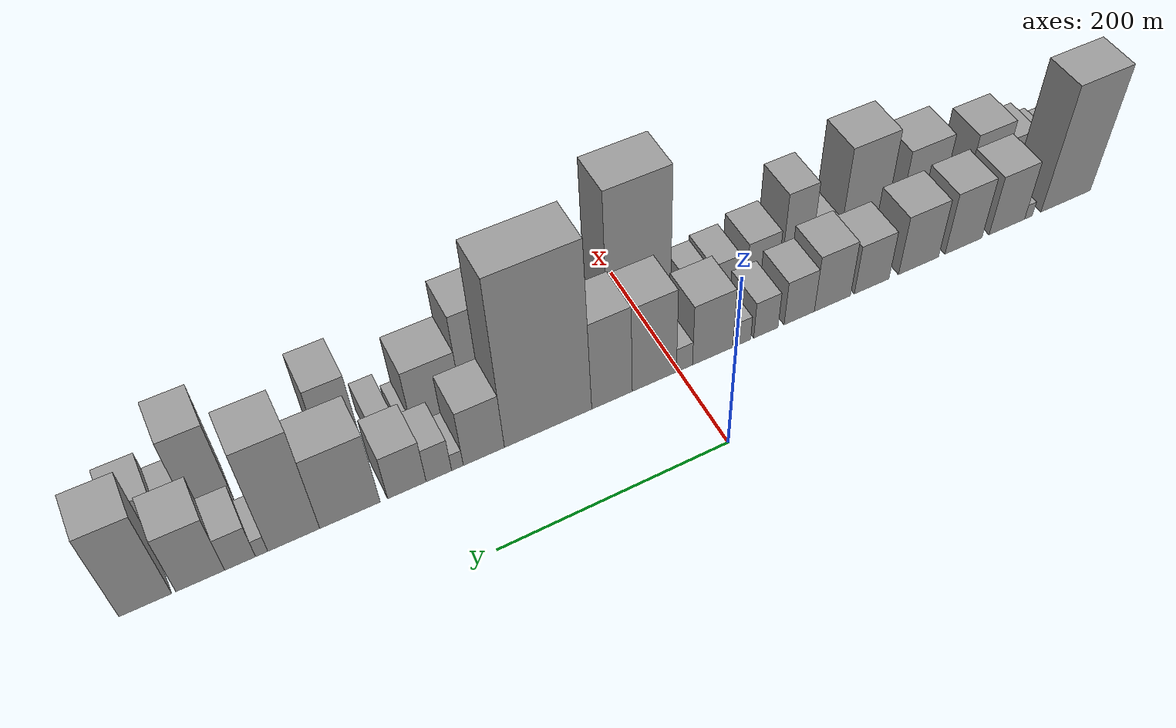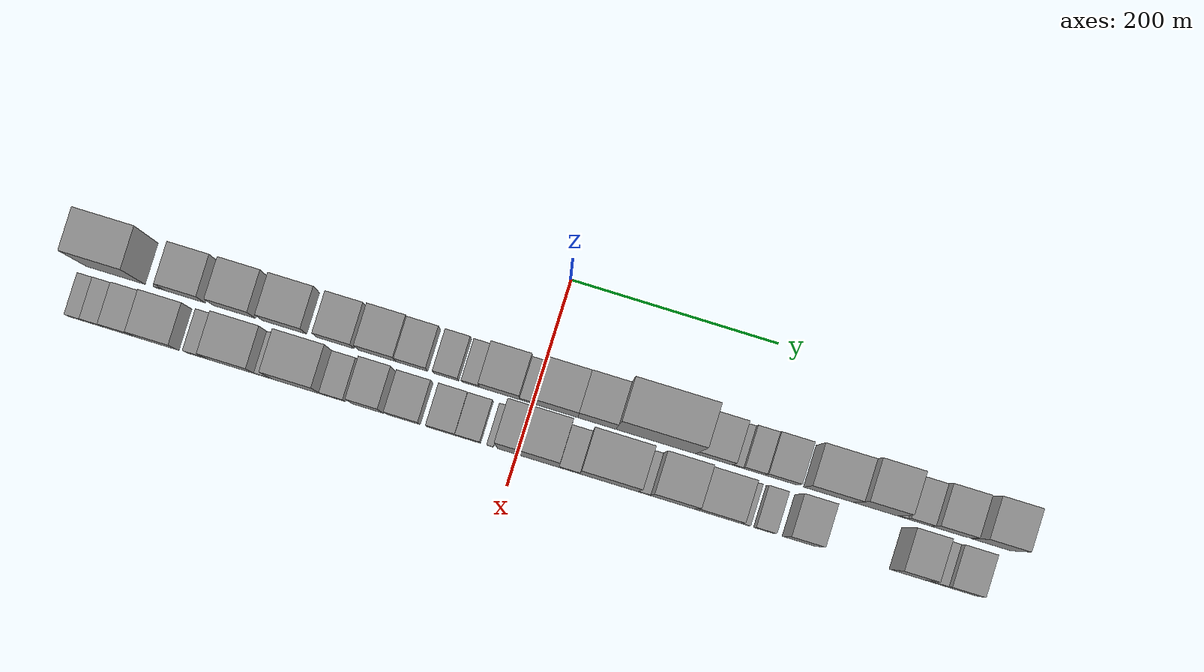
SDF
<sdf version="1.6">
 <world name="default">
  <scene>
   <sky><clouds><speed>12</speed></clouds></sky>
   <ambient>0.4 0.4 0.4 1</ambient>
   <background>0.7 0.7 0.7 1</background>
   <shadows>1</shadows>
  </scene>
  <gravity>0 0 -9.8066</gravity>
  <magnetic_field>6e-06 2.3e-05 -4.2e-05</magnetic_field>
  <physics default="0" name="default_physics" type="ode">
   <ode>
    <solver>
     <type>quick</type>
     <iters>10</iters>
     <sor>1.0</sor>
     <use_dynamic_moi_rescaling>0</use_dynamic_moi_rescaling>
    </solver>
    <constraints>
     <cfm>0</cfm>
     <erp>0.2</erp>
     <contact_max_correcting_vel>100</contact_max_correcting_vel>
     <contact_surface_layer>0.001</contact_surface_layer>
    </constraints>
   </ode>
   <max_step_size>0.004</max_step_size>
   <real_time_factor>1</real_time_factor>
   <real_time_update_rate>250</real_time_update_rate>
  </physics>
  <light name="sun" type="directional">
   <pose>0 0 10 0 0 0</pose>
   <diffuse>0.8 0.8 0.8 1</diffuse>
   <specular>0.2 0.2 0.2 1</specular>
   <attenuation>
    <range>1000</range>
    <constant>0.9</constant>
    <linear>0.01</linear>
    <quadratic>0.001</quadratic>
   </attenuation>
   <direction>-0.5 0.1 -0.9</direction>
  </light>
  <model name="building_1">
   <static>1</static>
   <pose>100.0000 -402.5720 0 0.000000 0.000000 0.000000</pose>
   <link name="link">
    <pose>0 0 75.00 0 0 0</pose>
    <collision name="collision"><geometry><box><size>40.0000 56.8560 150.0000</size></box></geometry></collision>
    <visual name="visual">
     <cast_shadows>0</cast_shadows>
     <geometry><box><size>40.0000 56.8560 150.0000</size></box></geometry>
     <material>
      <script>
       <uri>model://grey_wall/materials/scripts</uri>
       <uri>model://grey_wall/materials/textures</uri>
       <name>vrc/grey_wall</name>
      </script>
     </material>
    </visual>
   </link>
  </model>
  <model name="building_2">
   <static>1</static>
   <pose>100.0000 -359.8157 0 0.000000 0.000000 0.000000</pose>
   <link name="link">
    <pose>0 0 9.00 0 0 0</pose>
    <collision name="collision"><geometry><box><size>40.0000 8.6565 18.0000</size></box></geometry></collision>
    <visual name="visual">
     <cast_shadows>0</cast_shadows>
     <geometry><box><size>40.0000 8.6565 18.0000</size></box></geometry>
     <material>
      <script>
       <uri>model://grey_wall/materials/scripts</uri>
       <uri>model://grey_wall/materials/textures</uri>
       <name>vrc/grey_wall</name>
      </script>
     </material>
    </visual>
   </link>
  </model>
  <model name="building_3">
   <static>1</static>
   <pose>100.0000 -335.6497 0 0.000000 0.000000 0.000000</pose>
   <link name="link">
    <pose>0 0 36.00 0 0 0</pose>
    <collision name="collision"><geometry><box><size>40.0000 39.6756 72.0000</size></box></geometry></collision>
    <visual name="visual">
     <cast_shadows>0</cast_shadows>
     <geometry><box><size>40.0000 39.6756 72.0000</size></box></geometry>
     <material>
      <script>
       <uri>model://grey_wall/materials/scripts</uri>
       <uri>model://grey_wall/materials/textures</uri>
       <name>vrc/grey_wall</name>
      </script>
     </material>
    </visual>
   </link>
  </model>
  <model name="building_4">
   <static>1</static>
   <pose>100.0000 -287.6907 0 0.000000 0.000000 0.000000</pose>
   <link name="link">
    <pose>0 0 37.50 0 0 0</pose>
    <collision name="collision"><geometry><box><size>40.0000 40.2424 75.0000</size></box></geometry></collision>
    <visual name="visual">
     <cast_shadows>0</cast_shadows>
     <geometry><box><size>40.0000 40.2424 75.0000</size></box></geometry>
     <material>
      <script>
       <uri>model://grey_wall/materials/scripts</uri>
       <uri>model://grey_wall/materials/textures</uri>
       <name>vrc/grey_wall</name>
      </script>
     </material>
    </visual>
   </link>
  </model>
  <model name="building_5">
   <static>1</static>
   <pose>100.0000 -239.2767 0 0.000000 0.000000 0.000000</pose>
   <link name="link">
    <pose>0 0 36.00 0 0 0</pose>
    <collision name="collision"><geometry><box><size>40.0000 42.5856 72.0000</size></box></geometry></collision>
    <visual name="visual">
     <cast_shadows>0</cast_shadows>
     <geometry><box><size>40.0000 42.5856 72.0000</size></box></geometry>
     <material>
      <script>
       <uri>model://grey_wall/materials/scripts</uri>
       <uri>model://grey_wall/materials/textures</uri>
       <name>vrc/grey_wall</name>
      </script>
     </material>
    </visual>
   </link>
  </model>
  <model name="building_6">
   <static>1</static>
   <pose>100.0000 -190.0187 0 0.000000 0.000000 0.000000</pose>
   <link name="link">
    <pose>0 0 30.00 0 0 0</pose>
    <collision name="collision"><geometry><box><size>40.0000 35.9303 60.0000</size></box></geometry></collision>
    <visual name="visual">
     <cast_shadows>0</cast_shadows>
     <geometry><box><size>40.0000 35.9303 60.0000</size></box></geometry>
     <material>
      <script>
       <uri>model://grey_wall/materials/scripts</uri>
       <uri>model://grey_wall/materials/textures</uri>
       <name>vrc/grey_wall</name>
      </script>
     </material>
    </visual>
   </link>
  </model>
  <model name="building_7">
   <static>1</static>
   <pose>100.0000 -149.6607 0 0.000000 0.000000 0.000000</pose>
   <link name="link">
    <pose>0 0 34.50 0 0 0</pose>
    <collision name="collision"><geometry><box><size>40.0000 36.7856 69.0000</size></box></geometry></collision>
    <visual name="visual">
     <cast_shadows>0</cast_shadows>
     <geometry><box><size>40.0000 36.7856 69.0000</size></box></geometry>
     <material>
      <script>
       <uri>model://grey_wall/materials/scripts</uri>
       <uri>model://grey_wall/materials/textures</uri>
       <name>vrc/grey_wall</name>
      </script>
     </material>
    </visual>
   </link>
  </model>
  <model name="building_8">
   <static>1</static>
   <pose>100.0000 -116.1760 0 0.000000 0.000000 0.000000</pose>
   <link name="link">
    <pose>0 0 27.00 0 0 0</pose>
    <collision name="collision"><geometry><box><size>40.0000 30.1839 54.0000</size></box></geometry></collision>
    <visual name="visual">
     <cast_shadows>0</cast_shadows>
     <geometry><box><size>40.0000 30.1839 54.0000</size></box></geometry>
     <material>
      <script>
       <uri>model://grey_wall/materials/scripts</uri>
       <uri>model://grey_wall/materials/textures</uri>
       <name>vrc/grey_wall</name>
      </script>
     </material>
    </visual>
   </link>
  </model>
  <model name="building_9">
   <static>1</static>
   <pose>100.0000 -83.1549 0 0.000000 0.000000 0.000000</pose>
   <link name="link">
    <pose>0 0 22.50 0 0 0</pose>
    <collision name="collision"><geometry><box><size>40.0000 23.8582 45.0000</size></box></geometry></collision>
    <visual name="visual">
     <cast_shadows>0</cast_shadows>
     <geometry><box><size>40.0000 23.8582 45.0000</size></box></geometry>
     <material>
      <script>
       <uri>model://grey_wall/materials/scripts</uri>
       <uri>model://grey_wall/materials/textures</uri>
       <name>vrc/grey_wall</name>
      </script>
     </material>
    </visual>
   </link>
  </model>
  <model name="building_10">
   <static>1</static>
   <pose>100.0000 -59.6057 0 0.000000 0.000000 0.000000</pose>
   <link name="link">
    <pose>0 0 15.00 0 0 0</pose>
    <collision name="collision"><geometry><box><size>40.0000 17.2402 30.0000</size></box></geometry></collision>
    <visual name="visual">
     <cast_shadows>0</cast_shadows>
     <geometry><box><size>40.0000 17.2402 30.0000</size></box></geometry>
     <material>
      <script>
       <uri>model://grey_wall/materials/scripts</uri>
       <uri>model://grey_wall/materials/textures</uri>
       <name>vrc/grey_wall</name>
      </script>
     </material>
    </visual>
   </link>
  </model>
  <model name="building_11">
   <static>1</static>
   <pose>100.0000 -31.7075 0 0.000000 0.000000 0.000000</pose>
   <link name="link">
    <pose>0 0 37.50 0 0 0</pose>
    <collision name="collision"><geometry><box><size>40.0000 38.5562 75.0000</size></box></geometry></collision>
    <visual name="visual">
     <cast_shadows>0</cast_shadows>
     <geometry><box><size>40.0000 38.5562 75.0000</size></box></geometry>
     <material>
      <script>
       <uri>model://grey_wall/materials/scripts</uri>
       <uri>model://grey_wall/materials/textures</uri>
       <name>vrc/grey_wall</name>
      </script>
     </material>
    </visual>
   </link>
  </model>
  <model name="building_12">
   <static>1</static>
   <pose>100.0000 -4.8689 0 0.000000 0.000000 0.000000</pose>
   <link name="link">
    <pose>0 0 15.00 0 0 0</pose>
    <collision name="collision"><geometry><box><size>40.0000 15.1210 30.0000</size></box></geometry></collision>
    <visual name="visual">
     <cast_shadows>0</cast_shadows>
     <geometry><box><size>40.0000 15.1210 30.0000</size></box></geometry>
     <material>
      <script>
       <uri>model://grey_wall/materials/scripts</uri>
       <uri>model://grey_wall/materials/textures</uri>
       <name>vrc/grey_wall</name>
      </script>
     </material>
    </visual>
   </link>
  </model>
  <model name="building_13">
   <static>1</static>
   <pose>100.0000 23.0948 0 0.000000 0.000000 0.000000</pose>
   <link name="link">
    <pose>0 0 52.50 0 0 0</pose>
    <collision name="collision"><geometry><box><size>40.0000 40.8064 105.0000</size></box></geometry></collision>
    <visual name="visual">
     <cast_shadows>0</cast_shadows>
     <geometry><box><size>40.0000 40.8064 105.0000</size></box></geometry>
     <material>
      <script>
       <uri>model://grey_wall/materials/scripts</uri>
       <uri>model://grey_wall/materials/textures</uri>
       <name>vrc/grey_wall</name>
      </script>
     </material>
    </visual>
   </link>
  </model>
  <model name="building_14">
   <static>1</static>
   <pose>100.0000 61.8879 0 0.000000 0.000000 0.000000</pose>
   <link name="link">
    <pose>0 0 54.00 0 0 0</pose>
    <collision name="collision"><geometry><box><size>40.0000 36.7798 108.0000</size></box></geometry></collision>
    <visual name="visual">
     <cast_shadows>0</cast_shadows>
     <geometry><box><size>40.0000 36.7798 108.0000</size></box></geometry>
     <material>
      <script>
       <uri>model://grey_wall/materials/scripts</uri>
       <uri>model://grey_wall/materials/textures</uri>
       <name>vrc/grey_wall</name>
      </script>
     </material>
    </visual>
   </link>
  </model>
  <model name="building_15">
   <static>1</static>
   <pose>100.0000 118.6567 0 0.000000 0.000000 0.000000</pose>
   <link name="link">
    <pose>0 0 102.00 0 0 0</pose>
    <collision name="collision"><geometry><box><size>40.0000 76.7579 204.0000</size></box></geometry></collision>
    <visual name="visual">
     <cast_shadows>0</cast_shadows>
     <geometry><box><size>40.0000 76.7579 204.0000</size></box></geometry>
     <material>
      <script>
       <uri>model://grey_wall/materials/scripts</uri>
       <uri>model://grey_wall/materials/textures</uri>
       <name>vrc/grey_wall</name>
      </script>
     </material>
    </visual>
   </link>
  </model>
  <model name="building_16">
   <static>1</static>
   <pose>100.0000 174.5350 0 0.000000 0.000000 0.000000</pose>
   <link name="link">
    <pose>0 0 34.50 0 0 0</pose>
    <collision name="collision"><geometry><box><size>40.0000 34.9987 69.0000</size></box></geometry></collision>
    <visual name="visual">
     <cast_shadows>0</cast_shadows>
     <geometry><box><size>40.0000 34.9987 69.0000</size></box></geometry>
     <material>
      <script>
       <uri>model://grey_wall/materials/scripts</uri>
       <uri>model://grey_wall/materials/textures</uri>
       <name>vrc/grey_wall</name>
      </script>
     </material>
    </visual>
   </link>
  </model>
  <model name="building_17">
   <static>1</static>
   <pose>100.0000 196.9496 0 0.000000 0.000000 0.000000</pose>
   <link name="link">
    <pose>0 0 10.50 0 0 0</pose>
    <collision name="collision"><geometry><box><size>40.0000 9.8305 21.0000</size></box></geometry></collision>
    <visual name="visual">
     <cast_shadows>0</cast_shadows>
     <geometry><box><size>40.0000 9.8305 21.0000</size></box></geometry>
     <material>
      <script>
       <uri>model://grey_wall/materials/scripts</uri>
       <uri>model://grey_wall/materials/textures</uri>
       <name>vrc/grey_wall</name>
      </script>
     </material>
    </visual>
   </link>
  </model>
  <model name="building_18">
   <static>1</static>
   <pose>100.0000 212.4572 0 0.000000 0.000000 0.000000</pose>
   <link name="link">
    <pose>0 0 21.00 0 0 0</pose>
    <collision name="collision"><geometry><box><size>40.0000 21.1847 42.0000</size></box></geometry></collision>
    <visual name="visual">
     <cast_shadows>0</cast_shadows>
     <geometry><box><size>40.0000 21.1847 42.0000</size></box></geometry>
     <material>
      <script>
       <uri>model://grey_wall/materials/scripts</uri>
       <uri>model://grey_wall/materials/textures</uri>
       <name>vrc/grey_wall</name>
      </script>
     </material>
    </visual>
   </link>
  </model>
  <model name="building_19">
   <static>1</static>
   <pose>100.0000 238.8828 0 0.000000 0.000000 0.000000</pose>
   <link name="link">
    <pose>0 0 27.00 0 0 0</pose>
    <collision name="collision"><geometry><box><size>40.0000 31.6666 54.0000</size></box></geometry></collision>
    <visual name="visual">
     <cast_shadows>0</cast_shadows>
     <geometry><box><size>40.0000 31.6666 54.0000</size></box></geometry>
     <material>
      <script>
       <uri>model://grey_wall/materials/scripts</uri>
       <uri>model://grey_wall/materials/textures</uri>
       <name>vrc/grey_wall</name>
      </script>
     </material>
    </visual>
   </link>
  </model>
  <model name="building_20">
   <static>1</static>
   <pose>100.0000 284.8596 0 0.000000 0.000000 0.000000</pose>
   <link name="link">
    <pose>0 0 45.00 0 0 0</pose>
    <collision name="collision"><geometry><box><size>40.0000 48.2869 90.0000</size></box></geometry></collision>
    <visual name="visual">
     <cast_shadows>0</cast_shadows>
     <geometry><box><size>40.0000 48.2869 90.0000</size></box></geometry>
     <material>
      <script>
       <uri>model://grey_wall/materials/scripts</uri>
       <uri>model://grey_wall/materials/textures</uri>
       <name>vrc/grey_wall</name>
      </script>
     </material>
    </visual>
   </link>
  </model>
  <model name="building_21">
   <static>1</static>
   <pose>100.0000 329.2328 0 0.000000 0.000000 0.000000</pose>
   <link name="link">
    <pose>0 0 64.50 0 0 0</pose>
    <collision name="collision"><geometry><box><size>40.0000 40.4595 129.0000</size></box></geometry></collision>
    <visual name="visual">
     <cast_shadows>0</cast_shadows>
     <geometry><box><size>40.0000 40.4595 129.0000</size></box></geometry>
     <material>
      <script>
       <uri>model://grey_wall/materials/scripts</uri>
       <uri>model://grey_wall/materials/textures</uri>
       <name>vrc/grey_wall</name>
      </script>
     </material>
    </visual>
   </link>
  </model>
  <model name="building_22">
   <static>1</static>
   <pose>100.0000 354.1627 0 0.000000 0.000000 0.000000</pose>
   <link name="link">
    <pose>0 0 10.50 0 0 0</pose>
    <collision name="collision"><geometry><box><size>40.0000 9.4004 21.0000</size></box></geometry></collision>
    <visual name="visual">
     <cast_shadows>0</cast_shadows>
     <geometry><box><size>40.0000 9.4004 21.0000</size></box></geometry>
     <material>
      <script>
       <uri>model://grey_wall/materials/scripts</uri>
       <uri>model://grey_wall/materials/textures</uri>
       <name>vrc/grey_wall</name>
      </script>
     </material>
    </visual>
   </link>
  </model>
  <model name="building_23">
   <static>1</static>
   <pose>100.0000 370.5747 0 0.000000 0.000000 0.000000</pose>
   <link name="link">
    <pose>0 0 21.00 0 0 0</pose>
    <collision name="collision"><geometry><box><size>40.0000 23.4236 42.0000</size></box></geometry></collision>
    <visual name="visual">
     <cast_shadows>0</cast_shadows>
     <geometry><box><size>40.0000 23.4236 42.0000</size></box></geometry>
     <material>
      <script>
       <uri>model://grey_wall/materials/scripts</uri>
       <uri>model://grey_wall/materials/textures</uri>
       <name>vrc/grey_wall</name>
      </script>
     </material>
    </visual>
   </link>
  </model>
  <model name="building_24">
   <static>1</static>
   <pose>100.0000 400.5136 0 0.000000 0.000000 0.000000</pose>
   <link name="link">
    <pose>0 0 36.00 0 0 0</pose>
    <collision name="collision"><geometry><box><size>40.0000 36.4542 72.0000</size></box></geometry></collision>
    <visual name="visual">
     <cast_shadows>0</cast_shadows>
     <geometry><box><size>40.0000 36.4542 72.0000</size></box></geometry>
     <material>
      <script>
       <uri>model://grey_wall/materials/scripts</uri>
       <uri>model://grey_wall/materials/textures</uri>
       <name>vrc/grey_wall</name>
      </script>
     </material>
    </visual>
   </link>
  </model>
  <model name="building_25">
   <static>1</static>
   <pose>100.0000 440.9381 0 0.000000 0.000000 0.000000</pose>
   <link name="link">
    <pose>0 0 54.00 0 0 0</pose>
    <collision name="collision"><geometry><box><size>40.0000 38.3950 108.0000</size></box></geometry></collision>
    <visual name="visual">
     <cast_shadows>0</cast_shadows>
     <geometry><box><size>40.0000 38.3950 108.0000</size></box></geometry>
     <material>
      <script>
       <uri>model://grey_wall/materials/scripts</uri>
       <uri>model://grey_wall/materials/textures</uri>
       <name>vrc/grey_wall</name>
      </script>
     </material>
    </visual>
   </link>
  </model>
  <model name="building_26">
   <static>1</static>
   <pose>149.0000 -424.2974 0 0.000000 0.000000 0.000000</pose>
   <link name="link">
    <pose>0 0 15.00 0 0 0</pose>
    <collision name="collision"><geometry><box><size>40.0000 15.4053 30.0000</size></box></geometry></collision>
    <visual name="visual">
     <cast_shadows>0</cast_shadows>
     <geometry><box><size>40.0000 15.4053 30.0000</size></box></geometry>
     <material>
      <script>
       <uri>model://grey_wall/materials/scripts</uri>
       <uri>model://grey_wall/materials/textures</uri>
       <name>vrc/grey_wall</name>
      </script>
     </material>
    </visual>
   </link>
  </model>
  <model name="building_27">
   <static>1</static>
   <pose>149.0000 -406.6686 0 0.000000 0.000000 0.000000</pose>
   <link name="link">
    <pose>0 0 18.00 0 0 0</pose>
    <collision name="collision"><geometry><box><size>40.0000 19.8522 36.0000</size></box></geometry></collision>
    <visual name="visual">
     <cast_shadows>0</cast_shadows>
     <geometry><box><size>40.0000 19.8522 36.0000</size></box></geometry>
     <material>
      <script>
       <uri>model://grey_wall/materials/scripts</uri>
       <uri>model://grey_wall/materials/textures</uri>
       <name>vrc/grey_wall</name>
      </script>
     </material>
    </visual>
   </link>
  </model>
  <model name="building_28">
   <static>1</static>
   <pose>149.0000 -381.8740 0 0.000000 0.000000 0.000000</pose>
   <link name="link">
    <pose>0 0 25.50 0 0 0</pose>
    <collision name="collision"><geometry><box><size>40.0000 29.7371 51.0000</size></box></geometry></collision>
    <visual name="visual">
     <cast_shadows>0</cast_shadows>
     <geometry><box><size>40.0000 29.7371 51.0000</size></box></geometry>
     <material>
      <script>
       <uri>model://grey_wall/materials/scripts</uri>
       <uri>model://grey_wall/materials/textures</uri>
       <name>vrc/grey_wall</name>
      </script>
     </material>
    </visual>
   </link>
  </model>
  <model name="building_29">
   <static>1</static>
   <pose>149.0000 -346.5387 0 0.000000 0.000000 0.000000</pose>
   <link name="link">
    <pose>0 0 37.50 0 0 0</pose>
    <collision name="collision"><geometry><box><size>40.0000 40.9333 75.0000</size></box></geometry></collision>
    <visual name="visual">
     <cast_shadows>0</cast_shadows>
     <geometry><box><size>40.0000 40.9333 75.0000</size></box></geometry>
     <material>
      <script>
       <uri>model://grey_wall/materials/scripts</uri>
       <uri>model://grey_wall/materials/textures</uri>
       <name>vrc/grey_wall</name>
      </script>
     </material>
    </visual>
   </link>
  </model>
  <model name="building_30">
   <static>1</static>
   <pose>149.0000 -307.7992 0 0.000000 0.000000 0.000000</pose>
   <link name="link">
    <pose>0 0 18.00 0 0 0</pose>
    <collision name="collision"><geometry><box><size>40.0000 20.5458 36.0000</size></box></geometry></collision>
    <visual name="visual">
     <cast_shadows>0</cast_shadows>
     <geometry><box><size>40.0000 20.5458 36.0000</size></box></geometry>
     <material>
      <script>
       <uri>model://grey_wall/materials/scripts</uri>
       <uri>model://grey_wall/materials/textures</uri>
       <name>vrc/grey_wall</name>
      </script>
     </material>
    </visual>
   </link>
  </model>
  <model name="building_31">
   <static>1</static>
   <pose>149.0000 -274.6189 0 0.000000 0.000000 0.000000</pose>
   <link name="link">
    <pose>0 0 45.00 0 0 0</pose>
    <collision name="collision"><geometry><box><size>40.0000 45.8149 90.0000</size></box></geometry></collision>
    <visual name="visual">
     <cast_shadows>0</cast_shadows>
     <geometry><box><size>40.0000 45.8149 90.0000</size></box></geometry>
     <material>
      <script>
       <uri>model://grey_wall/materials/scripts</uri>
       <uri>model://grey_wall/materials/textures</uri>
       <name>vrc/grey_wall</name>
      </script>
     </material>
    </visual>
   </link>
  </model>
  <model name="building_32">
   <static>1</static>
   <pose>149.0000 -247.4831 0 0.000000 0.000000 0.000000</pose>
   <link name="link">
    <pose>0 0 10.50 0 0 0</pose>
    <collision name="collision"><geometry><box><size>40.0000 8.4566 21.0000</size></box></geometry></collision>
    <visual name="visual">
     <cast_shadows>0</cast_shadows>
     <geometry><box><size>40.0000 8.4566 21.0000</size></box></geometry>
     <material>
      <script>
       <uri>model://grey_wall/materials/scripts</uri>
       <uri>model://grey_wall/materials/textures</uri>
       <name>vrc/grey_wall</name>
      </script>
     </material>
    </visual>
   </link>
  </model>
  <model name="building_33">
   <static>1</static>
   <pose>149.0000 -239.4771 0 0.000000 0.000000 0.000000</pose>
   <link name="link">
    <pose>0 0 9.00 0 0 0</pose>
    <collision name="collision"><geometry><box><size>40.0000 7.5555 18.0000</size></box></geometry></collision>
    <visual name="visual">
     <cast_shadows>0</cast_shadows>
     <geometry><box><size>40.0000 7.5555 18.0000</size></box></geometry>
     <material>
      <script>
       <uri>model://grey_wall/materials/scripts</uri>
       <uri>model://grey_wall/materials/textures</uri>
       <name>vrc/grey_wall</name>
      </script>
     </material>
    </visual>
   </link>
  </model>
  <model name="building_34">
   <static>1</static>
   <pose>149.0000 -211.8277 0 0.000000 0.000000 0.000000</pose>
   <link name="link">
    <pose>0 0 61.50 0 0 0</pose>
    <collision name="collision"><geometry><box><size>40.0000 47.7434 123.0000</size></box></geometry></collision>
    <visual name="visual">
     <cast_shadows>0</cast_shadows>
     <geometry><box><size>40.0000 47.7434 123.0000</size></box></geometry>
     <material>
      <script>
       <uri>model://grey_wall/materials/scripts</uri>
       <uri>model://grey_wall/materials/textures</uri>
       <name>vrc/grey_wall</name>
      </script>
     </material>
    </visual>
   </link>
  </model>
  <model name="building_35">
   <static>1</static>
   <pose>149.0000 -176.6722 0 0.000000 0.000000 0.000000</pose>
   <link name="link">
    <pose>0 0 19.50 0 0 0</pose>
    <collision name="collision"><geometry><box><size>40.0000 22.5675 39.0000</size></box></geometry></collision>
    <visual name="visual">
     <cast_shadows>0</cast_shadows>
     <geometry><box><size>40.0000 22.5675 39.0000</size></box></geometry>
     <material>
      <script>
       <uri>model://grey_wall/materials/scripts</uri>
       <uri>model://grey_wall/materials/textures</uri>
       <name>vrc/grey_wall</name>
      </script>
     </material>
    </visual>
   </link>
  </model>
  <model name="building_36">
   <static>1</static>
   <pose>149.0000 -143.4260 0 0.000000 0.000000 0.000000</pose>
   <link name="link">
    <pose>0 0 49.50 0 0 0</pose>
    <collision name="collision"><geometry><box><size>40.0000 29.9249 99.0000</size></box></geometry></collision>
    <visual name="visual">
     <cast_shadows>0</cast_shadows>
     <geometry><box><size>40.0000 29.9249 99.0000</size></box></geometry>
     <material>
      <script>
       <uri>model://grey_wall/materials/scripts</uri>
       <uri>model://grey_wall/materials/textures</uri>
       <name>vrc/grey_wall</name>
      </script>
     </material>
    </visual>
   </link>
  </model>
  <model name="building_37">
   <static>1</static>
   <pose>149.0000 -109.3196 0 0.000000 0.000000 0.000000</pose>
   <link name="link">
    <pose>0 0 28.50 0 0 0</pose>
    <collision name="collision"><geometry><box><size>40.0000 32.2880 57.0000</size></box></geometry></collision>
    <visual name="visual">
     <cast_shadows>0</cast_shadows>
     <geometry><box><size>40.0000 32.2880 57.0000</size></box></geometry>
     <material>
      <script>
       <uri>model://grey_wall/materials/scripts</uri>
       <uri>model://grey_wall/materials/textures</uri>
       <name>vrc/grey_wall</name>
      </script>
     </material>
    </visual>
   </link>
  </model>
  <model name="building_38">
   <static>1</static>
   <pose>149.0000 -72.3829 0 0.000000 0.000000 0.000000</pose>
   <link name="link">
    <pose>0 0 24.00 0 0 0</pose>
    <collision name="collision"><geometry><box><size>40.0000 27.5853 48.0000</size></box></geometry></collision>
    <visual name="visual">
     <cast_shadows>0</cast_shadows>
     <geometry><box><size>40.0000 27.5853 48.0000</size></box></geometry>
     <material>
      <script>
       <uri>model://grey_wall/materials/scripts</uri>
       <uri>model://grey_wall/materials/textures</uri>
       <name>vrc/grey_wall</name>
      </script>
     </material>
    </visual>
   </link>
  </model>
  <model name="building_39">
   <static>1</static>
   <pose>149.0000 -46.7991 0 0.000000 0.000000 0.000000</pose>
   <link name="link">
    <pose>0 0 21.00 0 0 0</pose>
    <collision name="collision"><geometry><box><size>40.0000 23.5822 42.0000</size></box></geometry></collision>
    <visual name="visual">
     <cast_shadows>0</cast_shadows>
     <geometry><box><size>40.0000 23.5822 42.0000</size></box></geometry>
     <material>
      <script>
       <uri>model://grey_wall/materials/scripts</uri>
       <uri>model://grey_wall/materials/textures</uri>
       <name>vrc/grey_wall</name>
      </script>
     </material>
    </visual>
   </link>
  </model>
  <model name="building_40">
   <static>1</static>
   <pose>149.0000 -25.7494 0 0.000000 0.000000 0.000000</pose>
   <link name="link">
    <pose>0 0 7.50 0 0 0</pose>
    <collision name="collision"><geometry><box><size>40.0000 6.5171 15.0000</size></box></geometry></collision>
    <visual name="visual">
     <cast_shadows>0</cast_shadows>
     <geometry><box><size>40.0000 6.5171 15.0000</size></box></geometry>
     <material>
      <script>
       <uri>model://grey_wall/materials/scripts</uri>
       <uri>model://grey_wall/materials/textures</uri>
       <name>vrc/grey_wall</name>
      </script>
     </material>
    </visual>
   </link>
  </model>
  <model name="building_41">
   <static>1</static>
   <pose>149.0000 11.0743 0 0.000000 0.000000 0.000000</pose>
   <link name="link">
    <pose>0 0 93.00 0 0 0</pose>
    <collision name="collision"><geometry><box><size>40.0000 59.1303 186.0000</size></box></geometry></collision>
    <visual name="visual">
     <cast_shadows>0</cast_shadows>
     <geometry><box><size>40.0000 59.1303 186.0000</size></box></geometry>
     <material>
      <script>
       <uri>model://grey_wall/materials/scripts</uri>
       <uri>model://grey_wall/materials/textures</uri>
       <name>vrc/grey_wall</name>
      </script>
     </material>
    </visual>
   </link>
  </model>
  <model name="building_42">
   <static>1</static>
   <pose>149.0000 50.5630 0 0.000000 0.000000 0.000000</pose>
   <link name="link">
    <pose>0 0 19.50 0 0 0</pose>
    <collision name="collision"><geometry><box><size>40.0000 19.8471 39.0000</size></box></geometry></collision>
    <visual name="visual">
     <cast_shadows>0</cast_shadows>
     <geometry><box><size>40.0000 19.8471 39.0000</size></box></geometry>
     <material>
      <script>
       <uri>model://grey_wall/materials/scripts</uri>
       <uri>model://grey_wall/materials/textures</uri>
       <name>vrc/grey_wall</name>
      </script>
     </material>
    </visual>
   </link>
  </model>
  <model name="building_43">
   <static>1</static>
   <pose>149.0000 88.3051 0 0.000000 0.000000 0.000000</pose>
   <link name="link">
    <pose>0 0 72.00 0 0 0</pose>
    <collision name="collision"><geometry><box><size>40.0000 55.6370 144.0000</size></box></geometry></collision>
    <visual name="visual">
     <cast_shadows>0</cast_shadows>
     <geometry><box><size>40.0000 55.6370 144.0000</size></box></geometry>
     <material>
      <script>
       <uri>model://grey_wall/materials/scripts</uri>
       <uri>model://grey_wall/materials/textures</uri>
       <name>vrc/grey_wall</name>
      </script>
     </material>
    </visual>
   </link>
  </model>
  <model name="building_44">
   <static>1</static>
   <pose>149.0000 121.9700 0 0.000000 0.000000 0.000000</pose>
   <link name="link">
    <pose>0 0 13.50 0 0 0</pose>
    <collision name="collision"><geometry><box><size>40.0000 11.6928 27.0000</size></box></geometry></collision>
    <visual name="visual">
     <cast_shadows>0</cast_shadows>
     <geometry><box><size>40.0000 11.6928 27.0000</size></box></geometry>
     <material>
      <script>
       <uri>model://grey_wall/materials/scripts</uri>
       <uri>model://grey_wall/materials/textures</uri>
       <name>vrc/grey_wall</name>
      </script>
     </material>
    </visual>
   </link>
  </model>
  <model name="building_45">
   <static>1</static>
   <pose>149.0000 149.3913 0 0.000000 0.000000 0.000000</pose>
   <link name="link">
    <pose>0 0 58.50 0 0 0</pose>
    <collision name="collision"><geometry><box><size>40.0000 43.1496 117.0000</size></box></geometry></collision>
    <visual name="visual">
     <cast_shadows>0</cast_shadows>
     <geometry><box><size>40.0000 43.1496 117.0000</size></box></geometry>
     <material>
      <script>
       <uri>model://grey_wall/materials/scripts</uri>
       <uri>model://grey_wall/materials/textures</uri>
       <name>vrc/grey_wall</name>
      </script>
     </material>
    </visual>
   </link>
  </model>
  <model name="building_46">
   <static>1</static>
   <pose>149.0000 192.7886 0 0.000000 0.000000 0.000000</pose>
   <link name="link">
    <pose>0 0 37.50 0 0 0</pose>
    <collision name="collision"><geometry><box><size>40.0000 43.6450 75.0000</size></box></geometry></collision>
    <visual name="visual">
     <cast_shadows>0</cast_shadows>
     <geometry><box><size>40.0000 43.6450 75.0000</size></box></geometry>
     <material>
      <script>
       <uri>model://grey_wall/materials/scripts</uri>
       <uri>model://grey_wall/materials/textures</uri>
       <name>vrc/grey_wall</name>
      </script>
     </material>
    </visual>
   </link>
  </model>
  <model name="building_47">
   <static>1</static>
   <pose>149.0000 219.0789 0 0.000000 0.000000 0.000000</pose>
   <link name="link">
    <pose>0 0 9.00 0 0 0</pose>
    <collision name="collision"><geometry><box><size>40.0000 8.9357 18.0000</size></box></geometry></collision>
    <visual name="visual">
     <cast_shadows>0</cast_shadows>
     <geometry><box><size>40.0000 8.9357 18.0000</size></box></geometry>
     <material>
      <script>
       <uri>model://grey_wall/materials/scripts</uri>
       <uri>model://grey_wall/materials/textures</uri>
       <name>vrc/grey_wall</name>
      </script>
     </material>
    </visual>
   </link>
  </model>
  <model name="building_48">
   <static>1</static>
   <pose>149.0000 237.3122 0 0.000000 0.000000 0.000000</pose>
   <link name="link">
    <pose>0 0 18.00 0 0 0</pose>
    <collision name="collision"><geometry><box><size>40.0000 19.5309 36.0000</size></box></geometry></collision>
    <visual name="visual">
     <cast_shadows>0</cast_shadows>
     <geometry><box><size>40.0000 19.5309 36.0000</size></box></geometry>
     <material>
      <script>
       <uri>model://grey_wall/materials/scripts</uri>
       <uri>model://grey_wall/materials/textures</uri>
       <name>vrc/grey_wall</name>
      </script>
     </material>
    </visual>
   </link>
  </model>
  <model name="building_49">
   <static>1</static>
   <pose>149.0000 270.8680 0 0.000000 0.000000 0.000000</pose>
   <link name="link">
    <pose>0 0 49.50 0 0 0</pose>
    <collision name="collision"><geometry><box><size>40.0000 31.5807 99.0000</size></box></geometry></collision>
    <visual name="visual">
     <cast_shadows>0</cast_shadows>
     <geometry><box><size>40.0000 31.5807 99.0000</size></box></geometry>
     <material>
      <script>
       <uri>model://grey_wall/materials/scripts</uri>
       <uri>model://grey_wall/materials/textures</uri>
       <name>vrc/grey_wall</name>
      </script>
     </material>
    </visual>
   </link>
  </model>
  <model name="building_50">
   <static>1</static>
   <pose>149.0000 374.4677 0 0.000000 0.000000 0.000000</pose>
   <link name="link">
    <pose>0 0 54.00 0 0 0</pose>
    <collision name="collision"><geometry><box><size>40.0000 33.2063 108.0000</size></box></geometry></collision>
    <visual name="visual">
     <cast_shadows>0</cast_shadows>
     <geometry><box><size>40.0000 33.2063 108.0000</size></box></geometry>
     <material>
      <script>
       <uri>model://grey_wall/materials/scripts</uri>
       <uri>model://grey_wall/materials/textures</uri>
       <name>vrc/grey_wall</name>
      </script>
     </material>
    </visual>
   </link>
  </model>
  <model name="building_51">
   <static>1</static>
   <pose>149.0000 400.5112 0 0.000000 0.000000 0.000000</pose>
   <link name="link">
    <pose>0 0 18.00 0 0 0</pose>
    <collision name="collision"><geometry><box><size>40.0000 18.8807 36.0000</size></box></geometry></collision>
    <visual name="visual">
     <cast_shadows>0</cast_shadows>
     <geometry><box><size>40.0000 18.8807 36.0000</size></box></geometry>
     <material>
      <script>
       <uri>model://grey_wall/materials/scripts</uri>
       <uri>model://grey_wall/materials/textures</uri>
       <name>vrc/grey_wall</name>
      </script>
     </material>
    </visual>
   </link>
  </model>
  <model name="building_52">
   <static>1</static>
   <pose>149.0000 425.7410 0 0.000000 0.000000 0.000000</pose>
   <link name="link">
    <pose>0 0 28.50 0 0 0</pose>
    <collision name="collision"><geometry><box><size>40.0000 31.5789 57.0000</size></box></geometry></collision>
    <visual name="visual">
     <cast_shadows>0</cast_shadows>
     <geometry><box><size>40.0000 31.5789 57.0000</size></box></geometry>
     <material>
      <script>
       <uri>model://grey_wall/materials/scripts</uri>
       <uri>model://grey_wall/materials/textures</uri>
       <name>vrc/grey_wall</name>
      </script>
     </material>
    </visual>
   </link>
  </model>
 </world>
</sdf>
